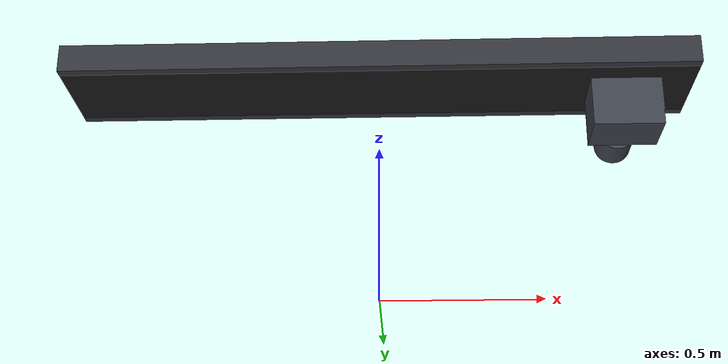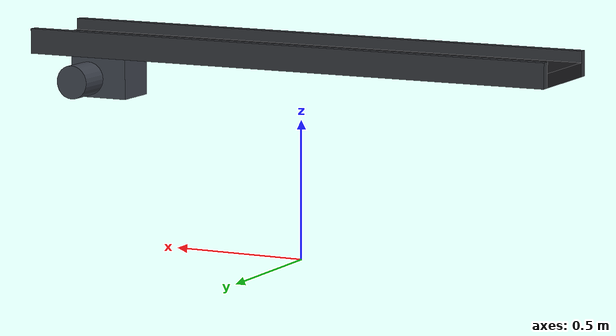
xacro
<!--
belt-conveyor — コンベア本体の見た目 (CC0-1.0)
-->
<?xml version="1.0"?>
<robot xmlns:xacro="http://www.ros.org/wiki/xacro" name="belt-conveyor-unit">
  <xacro:arg name="length" default="2.0"/>
  <xacro:arg name="width" default="0.3"/>
  <xacro:arg name="height" default="0.75"/>
  <xacro:arg name="belt_thickness" default="0.05"/>
  <xacro:arg name="rail" default="0.03"/>

  <xacro:property name="l" value="$(arg length)"/>
  <xacro:property name="w" value="$(arg width)"/>
  <xacro:property name="h" value="$(arg height)"/>
  <xacro:property name="bt" value="$(arg belt_thickness)"/>
  <xacro:property name="rl" value="$(arg rail)"/>
  <!-- ローラはベルト厚に収まる径。機体長からはみ出さない位置に置く -->
  <xacro:property name="r" value="${bt * 0.45}"/>
  <xacro:property name="dl" value="${min(0.22, l / 4)}"/>
  <xacro:property name="dw" value="${min(0.16, w * 0.6)}"/>
  <!-- 円筒は +Z 軸なので、幅方向に倒すには X 回りに 90 度 -->
  <xacro:property name="across" value="1.5707963267948966"/>

  <material name="belt"><color rgba="0.10 0.10 0.11 1"/></material>
  <material name="steel"><color rgba="0.20 0.21 0.23 1"/></material>
  <material name="motor"><color rgba="0.24 0.26 0.30 1"/></material>

  <link name="unit"/>

  <xacro:macro name="box_part" params="name size xyz mat">
    <link name="${name}">
      <visual>
        <origin xyz="${xyz}"/>
        <geometry><box size="${size}"/></geometry>
        <material name="${mat}"/>
      </visual>
    </link>
    <joint name="j_${name}" type="fixed"><parent link="unit"/><child link="${name}"/></joint>
  </xacro:macro>

  <xacro:macro name="roller" params="name radius length xyz mat">
    <link name="${name}">
      <visual>
        <origin xyz="${xyz}" rpy="${across} 0 0"/>
        <geometry><cylinder radius="${radius}" length="${length}"/></geometry>
        <material name="${mat}"/>
      </visual>
    </link>
    <joint name="j_${name}" type="fixed"><parent link="unit"/><child link="${name}"/></joint>
  </xacro:macro>

  <!-- ベルトと側板 (botrail 側の massing は非表示になり、これが見える) -->
  <xacro:box_part name="belt" size="${l} ${w} ${bt}" xyz="0 0 ${h - bt/2}" mat="belt"/>
  <xacro:box_part name="rail_l" size="${l} ${rl} ${bt + 0.04}"
                  xyz="0 ${w/2 + rl/2} ${h - bt/2 + 0.02}" mat="steel"/>
  <xacro:box_part name="rail_r" size="${l} ${rl} ${bt + 0.04}"
                  xyz="0 ${-w/2 - rl/2} ${h - bt/2 + 0.02}" mat="steel"/>

  <!-- ヘッド / テールローラ -->
  <xacro:roller name="head_roller" radius="${r}" length="${w}"
                xyz="${l/2 - r} 0 ${h - bt/2}" mat="steel"/>
  <xacro:roller name="tail_roller" radius="${r}" length="${w}"
                xyz="${-l/2 + r} 0 ${h - bt/2}" mat="steel"/>

  <!-- 駆動部: 排出側の下に減速機、その脇にモータ -->
  <xacro:box_part name="drive" size="${dl} ${dw} ${dw}"
                  xyz="${l/2 - dl} 0 ${h - bt - dw/2}" mat="motor"/>
  <xacro:roller name="motor" radius="${dw*0.375}" length="${dw*0.75}"
                xyz="${l/2 - dl} ${w/2 + dw*0.375} ${h - bt - dw/2}" mat="motor"/>
</robot>
